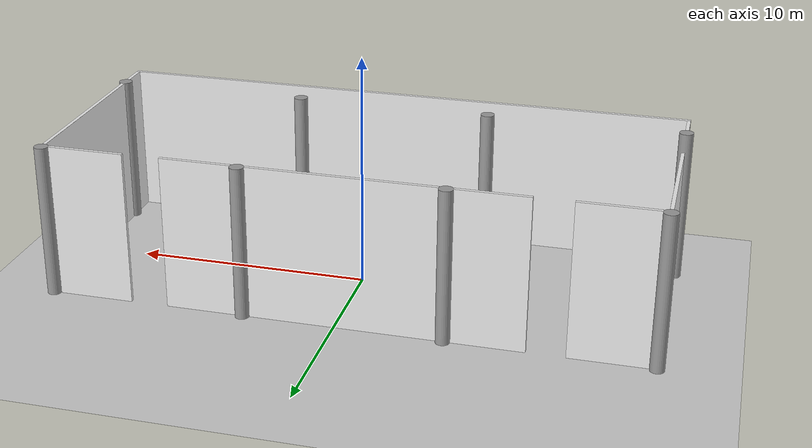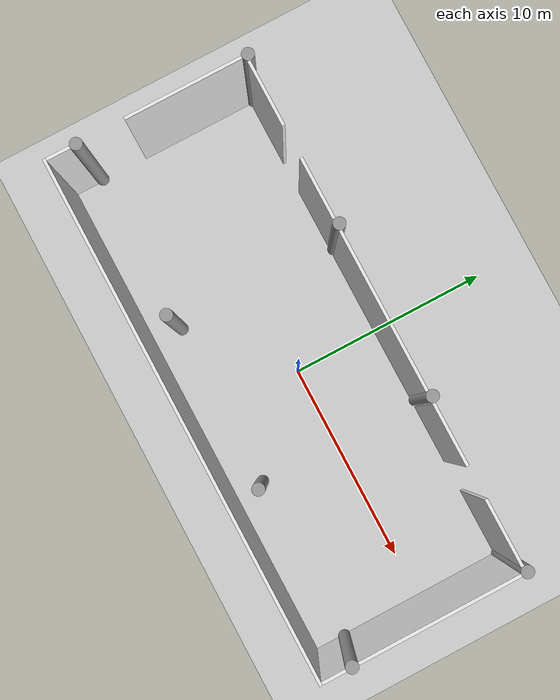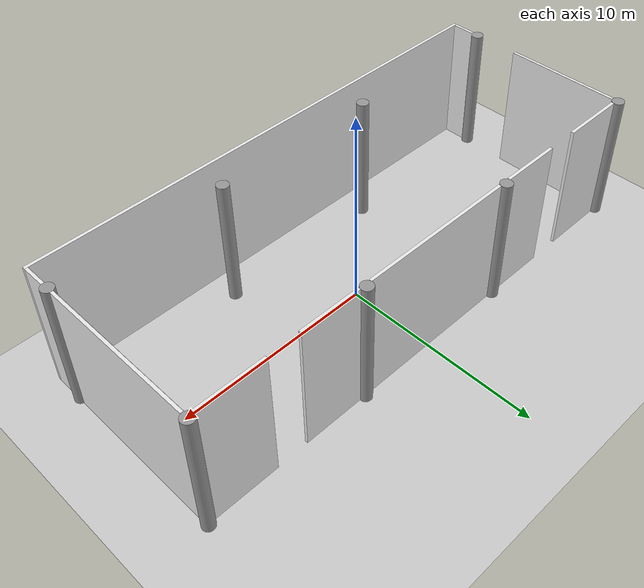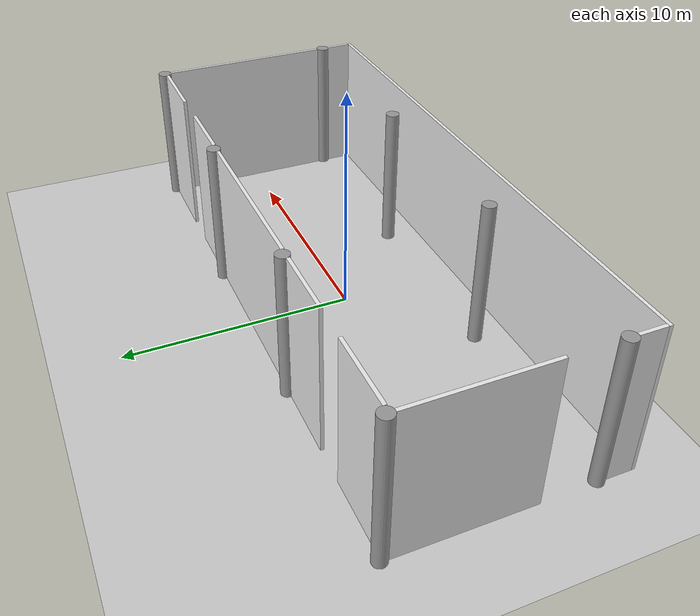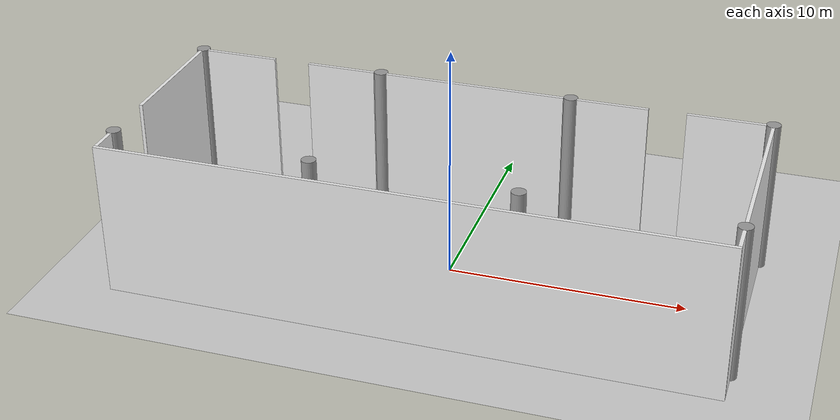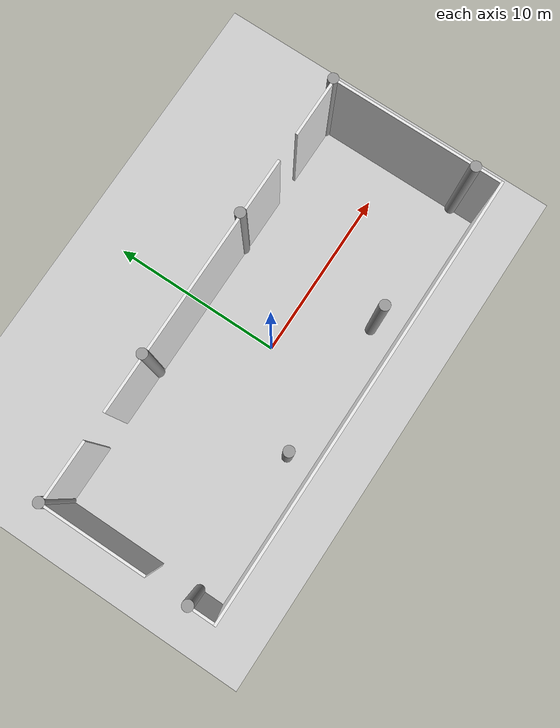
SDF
<?xml version="1.0" ?>
<sdf version="1.6">
   <world name="default">
      <include>
         <uri>model://ground_plane</uri>
      </include>
      <include>
         <uri>model://sun</uri>
      </include>
      <include>
         <uri>model://tii_lab_noceil</uri>
         <pose>-0.3 0.4544 3.385 0 0 -1.57</pose>
      </include>
   </world>
</sdf>

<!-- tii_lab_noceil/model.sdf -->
<sdf version='1.7'>
  <model name='tii_lab_noceil'>
    <static>true</static>
    <link name='link_0'>
      <inertial>
        <mass>100</mass>
        <inertia>
          <ixx>0.145833</ixx>
          <ixy>0</ixy>
          <ixz>0</ixz>
          <iyy>0.145833</iyy>
          <iyz>0</iyz>
          <izz>0.125</izz>
        </inertia>
        <pose>0 0 0 0 -0 0</pose>
      </inertial>
      <pose>-3.94564 -12.6 -0.180789 0 -0 0</pose>
      <gravity>1</gravity>
      <self_collide>0</self_collide>
      <kinematic>0</kinematic>
      <enable_wind>0</enable_wind>
      <visual name='visual'>
        <pose>0 0 0 0 -0 0</pose>
        <geometry>
          <cylinder>
            <radius>0.3</radius>
            <length>6.77</length>
          </cylinder>
        </geometry>
        <material>
          <lighting>1</lighting>
          <script>
            <uri>file://media/materials/scripts/gazebo.material</uri>
            <name>Gazebo/Grey</name>
          </script>
          <shader type='pixel'>
            <normal_map>__default__</normal_map>
          </shader>
          <ambient>0.3 0.3 0.3 1</ambient>
          <diffuse>0.7 0.7 0.7 1</diffuse>
          <specular>0.01 0.01 0.01 1</specular>
          <emissive>0 0 0 1</emissive>
        </material>
        <transparency>0</transparency>
        <cast_shadows>1</cast_shadows>
      </visual>
      <collision name='collision'>
        <laser_retro>0</laser_retro>
        <max_contacts>10</max_contacts>
        <pose>0 0 0 0 -0 0</pose>
        <geometry>
          <cylinder>
            <radius>0.3</radius>
            <length>6.77</length>
          </cylinder>
        </geometry>
        <surface>
          <friction>
            <ode>
              <mu>1</mu>
              <mu2>1</mu2>
              <fdir1>0 0 0</fdir1>
              <slip1>0</slip1>
              <slip2>0</slip2>
            </ode>
            <torsional>
              <coefficient>1</coefficient>
              <patch_radius>0</patch_radius>
              <surface_radius>0</surface_radius>
              <use_patch_radius>1</use_patch_radius>
              <ode>
                <slip>0</slip>
              </ode>
            </torsional>
          </friction>
          <bounce>
            <restitution_coefficient>0</restitution_coefficient>
            <threshold>1e+06</threshold>
          </bounce>
          <contact>
            <collide_without_contact>0</collide_without_contact>
            <collide_without_contact_bitmask>1</collide_without_contact_bitmask>
            <collide_bitmask>1</collide_bitmask>
            <ode>
              <soft_cfm>0</soft_cfm>
              <soft_erp>0.2</soft_erp>
              <kp>1e+13</kp>
              <kd>1</kd>
              <max_vel>0.01</max_vel>
              <min_depth>0</min_depth>
            </ode>
            <bullet>
              <split_impulse>1</split_impulse>
              <split_impulse_penetration_threshold>-0.01</split_impulse_penetration_threshold>
              <soft_cfm>0</soft_cfm>
              <soft_erp>0.2</soft_erp>
              <kp>1e+13</kp>
              <kd>1</kd>
            </bullet>
          </contact>
        </surface>
      </collision>
    </link>
    <link name='link_0_clone'>
      <inertial>
        <mass>100</mass>
        <inertia>
          <ixx>0.145833</ixx>
          <ixy>0</ixy>
          <ixz>0</ixz>
          <iyy>0.145833</iyy>
          <iyz>0</iyz>
          <izz>0.125</izz>
        </inertia>
        <pose>0 0 0 0 -0 0</pose>
      </inertial>
      <pose>-3.94564 -4.2 -0.180789 0 -0 0</pose>
      <gravity>1</gravity>
      <self_collide>0</self_collide>
      <kinematic>0</kinematic>
      <enable_wind>0</enable_wind>
      <visual name='visual'>
        <pose>0 0 0 0 -0 0</pose>
        <geometry>
          <cylinder>
            <radius>0.3</radius>
            <length>6.77</length>
          </cylinder>
        </geometry>
        <material>
          <lighting>1</lighting>
          <script>
            <uri>file://media/materials/scripts/gazebo.material</uri>
            <name>Gazebo/Grey</name>
          </script>
          <shader type='pixel'>
            <normal_map>__default__</normal_map>
          </shader>
          <ambient>0.3 0.3 0.3 1</ambient>
          <diffuse>0.7 0.7 0.7 1</diffuse>
          <specular>0.01 0.01 0.01 1</specular>
          <emissive>0 0 0 1</emissive>
        </material>
        <transparency>0</transparency>
        <cast_shadows>1</cast_shadows>
      </visual>
      <collision name='collision'>
        <laser_retro>0</laser_retro>
        <max_contacts>10</max_contacts>
        <pose>0 0 0 0 -0 0</pose>
        <geometry>
          <cylinder>
            <radius>0.3</radius>
            <length>6.77</length>
          </cylinder>
        </geometry>
        <surface>
          <friction>
            <ode>
              <mu>1</mu>
              <mu2>1</mu2>
              <fdir1>0 0 0</fdir1>
              <slip1>0</slip1>
              <slip2>0</slip2>
            </ode>
            <torsional>
              <coefficient>1</coefficient>
              <patch_radius>0</patch_radius>
              <surface_radius>0</surface_radius>
              <use_patch_radius>1</use_patch_radius>
              <ode>
                <slip>0</slip>
              </ode>
            </torsional>
          </friction>
          <bounce>
            <restitution_coefficient>0</restitution_coefficient>
            <threshold>1e+06</threshold>
          </bounce>
          <contact>
            <collide_without_contact>0</collide_without_contact>
            <collide_without_contact_bitmask>1</collide_without_contact_bitmask>
            <collide_bitmask>1</collide_bitmask>
            <ode>
              <soft_cfm>0</soft_cfm>
              <soft_erp>0.2</soft_erp>
              <kp>1e+13</kp>
              <kd>1</kd>
              <max_vel>0.01</max_vel>
              <min_depth>0</min_depth>
            </ode>
            <bullet>
              <split_impulse>1</split_impulse>
              <split_impulse_penetration_threshold>-0.01</split_impulse_penetration_threshold>
              <soft_cfm>0</soft_cfm>
              <soft_erp>0.2</soft_erp>
              <kp>1e+13</kp>
              <kd>1</kd>
            </bullet>
          </contact>
        </surface>
      </collision>
    </link>
    <link name='link_0_clone_0'>
      <inertial>
        <mass>100</mass>
        <inertia>
          <ixx>0.145833</ixx>
          <ixy>0</ixy>
          <ixz>0</ixz>
          <iyy>0.145833</iyy>
          <iyz>0</iyz>
          <izz>0.125</izz>
        </inertia>
        <pose>0 0 0 0 -0 0</pose>
      </inertial>
      <pose>-3.94564 4.2 -0.180789 0 -0 0</pose>
      <gravity>1</gravity>
      <self_collide>0</self_collide>
      <kinematic>0</kinematic>
      <enable_wind>0</enable_wind>
      <visual name='visual'>
        <pose>0 0 0 0 -0 0</pose>
        <geometry>
          <cylinder>
            <radius>0.3</radius>
            <length>6.77</length>
          </cylinder>
        </geometry>
        <material>
          <lighting>1</lighting>
          <script>
            <uri>file://media/materials/scripts/gazebo.material</uri>
            <name>Gazebo/Grey</name>
          </script>
          <shader type='pixel'>
            <normal_map>__default__</normal_map>
          </shader>
          <ambient>0.3 0.3 0.3 1</ambient>
          <diffuse>0.7 0.7 0.7 1</diffuse>
          <specular>0.01 0.01 0.01 1</specular>
          <emissive>0 0 0 1</emissive>
        </material>
        <transparency>0</transparency>
        <cast_shadows>1</cast_shadows>
      </visual>
      <collision name='collision'>
        <laser_retro>0</laser_retro>
        <max_contacts>10</max_contacts>
        <pose>0 0 0 0 -0 0</pose>
        <geometry>
          <cylinder>
            <radius>0.3</radius>
            <length>6.77</length>
          </cylinder>
        </geometry>
        <surface>
          <friction>
            <ode>
              <mu>1</mu>
              <mu2>1</mu2>
              <fdir1>0 0 0</fdir1>
              <slip1>0</slip1>
              <slip2>0</slip2>
            </ode>
            <torsional>
              <coefficient>1</coefficient>
              <patch_radius>0</patch_radius>
              <surface_radius>0</surface_radius>
              <use_patch_radius>1</use_patch_radius>
              <ode>
                <slip>0</slip>
              </ode>
            </torsional>
          </friction>
          <bounce>
            <restitution_coefficient>0</restitution_coefficient>
            <threshold>1e+06</threshold>
          </bounce>
          <contact>
            <collide_without_contact>0</collide_without_contact>
            <collide_without_contact_bitmask>1</collide_without_contact_bitmask>
            <collide_bitmask>1</collide_bitmask>
            <ode>
              <soft_cfm>0</soft_cfm>
              <soft_erp>0.2</soft_erp>
              <kp>1e+13</kp>
              <kd>1</kd>
              <max_vel>0.01</max_vel>
              <min_depth>0</min_depth>
            </ode>
            <bullet>
              <split_impulse>1</split_impulse>
              <split_impulse_penetration_threshold>-0.01</split_impulse_penetration_threshold>
              <soft_cfm>0</soft_cfm>
              <soft_erp>0.2</soft_erp>
              <kp>1e+13</kp>
              <kd>1</kd>
            </bullet>
          </contact>
        </surface>
      </collision>
    </link>
    <link name='link_0_clone_1'>
      <inertial>
        <mass>100</mass>
        <inertia>
          <ixx>0.145833</ixx>
          <ixy>0</ixy>
          <ixz>0</ixz>
          <iyy>0.145833</iyy>
          <iyz>0</iyz>
          <izz>0.125</izz>
        </inertia>
        <pose>0 0 0 0 -0 0</pose>
      </inertial>
      <pose>-3.94564 12.6 -0.180789 0 -0 0</pose>
      <gravity>1</gravity>
      <self_collide>0</self_collide>
      <kinematic>0</kinematic>
      <enable_wind>0</enable_wind>
      <visual name='visual'>
        <pose>0 0 0 0 -0 0</pose>
        <geometry>
          <cylinder>
            <radius>0.3</radius>
            <length>6.77</length>
          </cylinder>
        </geometry>
        <material>
          <lighting>1</lighting>
          <script>
            <uri>file://media/materials/scripts/gazebo.material</uri>
            <name>Gazebo/Grey</name>
          </script>
          <shader type='pixel'>
            <normal_map>__default__</normal_map>
          </shader>
          <ambient>0.3 0.3 0.3 1</ambient>
          <diffuse>0.7 0.7 0.7 1</diffuse>
          <specular>0.01 0.01 0.01 1</specular>
          <emissive>0 0 0 1</emissive>
        </material>
        <transparency>0</transparency>
        <cast_shadows>1</cast_shadows>
      </visual>
      <collision name='collision'>
        <laser_retro>0</laser_retro>
        <max_contacts>10</max_contacts>
        <pose>0 0 0 0 -0 0</pose>
        <geometry>
          <cylinder>
            <radius>0.3</radius>
            <length>6.77</length>
          </cylinder>
        </geometry>
        <surface>
          <friction>
            <ode>
              <mu>1</mu>
              <mu2>1</mu2>
              <fdir1>0 0 0</fdir1>
              <slip1>0</slip1>
              <slip2>0</slip2>
            </ode>
            <torsional>
              <coefficient>1</coefficient>
              <patch_radius>0</patch_radius>
              <surface_radius>0</surface_radius>
              <use_patch_radius>1</use_patch_radius>
              <ode>
                <slip>0</slip>
              </ode>
            </torsional>
          </friction>
          <bounce>
            <restitution_coefficient>0</restitution_coefficient>
            <threshold>1e+06</threshold>
          </bounce>
          <contact>
            <collide_without_contact>0</collide_without_contact>
            <collide_without_contact_bitmask>1</collide_without_contact_bitmask>
            <collide_bitmask>1</collide_bitmask>
            <ode>
              <soft_cfm>0</soft_cfm>
              <soft_erp>0.2</soft_erp>
              <kp>1e+13</kp>
              <kd>1</kd>
              <max_vel>0.01</max_vel>
              <min_depth>0</min_depth>
            </ode>
            <bullet>
              <split_impulse>1</split_impulse>
              <split_impulse_penetration_threshold>-0.01</split_impulse_penetration_threshold>
              <soft_cfm>0</soft_cfm>
              <soft_erp>0.2</soft_erp>
              <kp>1e+13</kp>
              <kd>1</kd>
            </bullet>
          </contact>
        </surface>
      </collision>
    </link>
    <link name='link_0_clone_2'>
      <inertial>
        <mass>100</mass>
        <inertia>
          <ixx>0.145833</ixx>
          <ixy>0</ixy>
          <ixz>0</ixz>
          <iyy>0.145833</iyy>
          <iyz>0</iyz>
          <izz>0.125</izz>
        </inertia>
        <pose>0 0 0 0 -0 0</pose>
      </inertial>
      <pose>4.45436 -12.6 -0.180789 0 -0 0</pose>
      <gravity>1</gravity>
      <self_collide>0</self_collide>
      <kinematic>0</kinematic>
      <enable_wind>0</enable_wind>
      <visual name='visual'>
        <pose>0 0 0 0 -0 0</pose>
        <geometry>
          <cylinder>
            <radius>0.3</radius>
            <length>6.77</length>
          </cylinder>
        </geometry>
        <material>
          <lighting>1</lighting>
          <script>
            <uri>file://media/materials/scripts/gazebo.material</uri>
            <name>Gazebo/Grey</name>
          </script>
          <shader type='pixel'>
            <normal_map>__default__</normal_map>
          </shader>
          <ambient>0.3 0.3 0.3 1</ambient>
          <diffuse>0.7 0.7 0.7 1</diffuse>
          <specular>0.01 0.01 0.01 1</specular>
          <emissive>0 0 0 1</emissive>
        </material>
        <transparency>0</transparency>
        <cast_shadows>1</cast_shadows>
      </visual>
      <collision name='collision'>
        <laser_retro>0</laser_retro>
        <max_contacts>10</max_contacts>
        <pose>0 0 0 0 -0 0</pose>
        <geometry>
          <cylinder>
            <radius>0.3</radius>
            <length>6.77</length>
          </cylinder>
        </geometry>
        <surface>
          <friction>
            <ode>
              <mu>1</mu>
              <mu2>1</mu2>
              <fdir1>0 0 0</fdir1>
              <slip1>0</slip1>
              <slip2>0</slip2>
            </ode>
            <torsional>
              <coefficient>1</coefficient>
              <patch_radius>0</patch_radius>
              <surface_radius>0</surface_radius>
              <use_patch_radius>1</use_patch_radius>
              <ode>
                <slip>0</slip>
              </ode>
            </torsional>
          </friction>
          <bounce>
            <restitution_coefficient>0</restitution_coefficient>
            <threshold>1e+06</threshold>
          </bounce>
          <contact>
            <collide_without_contact>0</collide_without_contact>
            <collide_without_contact_bitmask>1</collide_without_contact_bitmask>
            <collide_bitmask>1</collide_bitmask>
            <ode>
              <soft_cfm>0</soft_cfm>
              <soft_erp>0.2</soft_erp>
              <kp>1e+13</kp>
              <kd>1</kd>
              <max_vel>0.01</max_vel>
              <min_depth>0</min_depth>
            </ode>
            <bullet>
              <split_impulse>1</split_impulse>
              <split_impulse_penetration_threshold>-0.01</split_impulse_penetration_threshold>
              <soft_cfm>0</soft_cfm>
              <soft_erp>0.2</soft_erp>
              <kp>1e+13</kp>
              <kd>1</kd>
            </bullet>
          </contact>
        </surface>
      </collision>
    </link>
    <link name='link_0_clone_3'>
      <inertial>
        <mass>100</mass>
        <inertia>
          <ixx>0.145833</ixx>
          <ixy>0</ixy>
          <ixz>0</ixz>
          <iyy>0.145833</iyy>
          <iyz>0</iyz>
          <izz>0.125</izz>
        </inertia>
        <pose>0 0 0 0 -0 0</pose>
      </inertial>
      <pose>4.45436 -4.2 -0.180789 0 -0 0</pose>
      <gravity>1</gravity>
      <self_collide>0</self_collide>
      <kinematic>0</kinematic>
      <enable_wind>0</enable_wind>
      <visual name='visual'>
        <pose>0 0 0 0 -0 0</pose>
        <geometry>
          <cylinder>
            <radius>0.3</radius>
            <length>6.77</length>
          </cylinder>
        </geometry>
        <material>
          <lighting>1</lighting>
          <script>
            <uri>file://media/materials/scripts/gazebo.material</uri>
            <name>Gazebo/Grey</name>
          </script>
          <shader type='pixel'>
            <normal_map>__default__</normal_map>
          </shader>
          <ambient>0.3 0.3 0.3 1</ambient>
          <diffuse>0.7 0.7 0.7 1</diffuse>
          <specular>0.01 0.01 0.01 1</specular>
          <emissive>0 0 0 1</emissive>
        </material>
        <transparency>0</transparency>
        <cast_shadows>1</cast_shadows>
      </visual>
      <collision name='collision'>
        <laser_retro>0</laser_retro>
        <max_contacts>10</max_contacts>
        <pose>0 0 0 0 -0 0</pose>
        <geometry>
          <cylinder>
            <radius>0.3</radius>
            <length>6.77</length>
          </cylinder>
        </geometry>
        <surface>
          <friction>
            <ode>
              <mu>1</mu>
              <mu2>1</mu2>
              <fdir1>0 0 0</fdir1>
              <slip1>0</slip1>
              <slip2>0</slip2>
            </ode>
            <torsional>
              <coefficient>1</coefficient>
              <patch_radius>0</patch_radius>
              <surface_radius>0</surface_radius>
              <use_patch_radius>1</use_patch_radius>
              <ode>
                <slip>0</slip>
              </ode>
            </torsional>
          </friction>
          <bounce>
            <restitution_coefficient>0</restitution_coefficient>
            <threshold>1e+06</threshold>
          </bounce>
          <contact>
            <collide_without_contact>0</collide_without_contact>
            <collide_without_contact_bitmask>1</collide_without_contact_bitmask>
            <collide_bitmask>1</collide_bitmask>
            <ode>
              <soft_cfm>0</soft_cfm>
              <soft_erp>0.2</soft_erp>
              <kp>1e+13</kp>
              <kd>1</kd>
              <max_vel>0.01</max_vel>
              <min_depth>0</min_depth>
            </ode>
            <bullet>
              <split_impulse>1</split_impulse>
              <split_impulse_penetration_threshold>-0.01</split_impulse_penetration_threshold>
              <soft_cfm>0</soft_cfm>
              <soft_erp>0.2</soft_erp>
              <kp>1e+13</kp>
              <kd>1</kd>
            </bullet>
          </contact>
        </surface>
      </collision>
    </link>
    <link name='link_0_clone_4'>
      <inertial>
        <mass>100</mass>
        <inertia>
          <ixx>0.145833</ixx>
          <ixy>0</ixy>
          <ixz>0</ixz>
          <iyy>0.145833</iyy>
          <iyz>0</iyz>
          <izz>0.125</izz>
        </inertia>
        <pose>0 0 0 0 -0 0</pose>
      </inertial>
      <pose>4.45436 4.2 -0.180789 0 -0 0</pose>
      <gravity>1</gravity>
      <self_collide>0</self_collide>
      <kinematic>0</kinematic>
      <enable_wind>0</enable_wind>
      <visual name='visual'>
        <pose>0 0 0 0 -0 0</pose>
        <geometry>
          <cylinder>
            <radius>0.3</radius>
            <length>6.77</length>
          </cylinder>
        </geometry>
        <material>
          <lighting>1</lighting>
          <script>
            <uri>file://media/materials/scripts/gazebo.material</uri>
            <name>Gazebo/Grey</name>
          </script>
          <shader type='pixel'>
            <normal_map>__default__</normal_map>
          </shader>
          <ambient>0.3 0.3 0.3 1</ambient>
          <diffuse>0.7 0.7 0.7 1</diffuse>
          <specular>0.01 0.01 0.01 1</specular>
          <emissive>0 0 0 1</emissive>
        </material>
        <transparency>0</transparency>
        <cast_shadows>1</cast_shadows>
      </visual>
      <collision name='collision'>
        <laser_retro>0</laser_retro>
        <max_contacts>10</max_contacts>
        <pose>0 0 0 0 -0 0</pose>
        <geometry>
          <cylinder>
            <radius>0.3</radius>
            <length>6.77</length>
          </cylinder>
        </geometry>
        <surface>
          <friction>
            <ode>
              <mu>1</mu>
              <mu2>1</mu2>
              <fdir1>0 0 0</fdir1>
              <slip1>0</slip1>
              <slip2>0</slip2>
            </ode>
            <torsional>
              <coefficient>1</coefficient>
              <patch_radius>0</patch_radius>
              <surface_radius>0</surface_radius>
              <use_patch_radius>1</use_patch_radius>
              <ode>
                <slip>0</slip>
              </ode>
            </torsional>
          </friction>
          <bounce>
            <restitution_coefficient>0</restitution_coefficient>
            <threshold>1e+06</threshold>
          </bounce>
          <contact>
            <collide_without_contact>0</collide_without_contact>
            <collide_without_contact_bitmask>1</collide_without_contact_bitmask>
            <collide_bitmask>1</collide_bitmask>
            <ode>
              <soft_cfm>0</soft_cfm>
              <soft_erp>0.2</soft_erp>
              <kp>1e+13</kp>
              <kd>1</kd>
              <max_vel>0.01</max_vel>
              <min_depth>0</min_depth>
            </ode>
            <bullet>
              <split_impulse>1</split_impulse>
              <split_impulse_penetration_threshold>-0.01</split_impulse_penetration_threshold>
              <soft_cfm>0</soft_cfm>
              <soft_erp>0.2</soft_erp>
              <kp>1e+13</kp>
              <kd>1</kd>
            </bullet>
          </contact>
        </surface>
      </collision>
    </link>
    <link name='link_0_clone_5'>
      <inertial>
        <mass>100</mass>
        <inertia>
          <ixx>0.145833</ixx>
          <ixy>0</ixy>
          <ixz>0</ixz>
          <iyy>0.145833</iyy>
          <iyz>0</iyz>
          <izz>0.125</izz>
        </inertia>
        <pose>0 0 0 0 -0 0</pose>
      </inertial>
      <pose>4.45436 12.6 -0.180789 0 -0 0</pose>
      <gravity>1</gravity>
      <self_collide>0</self_collide>
      <kinematic>0</kinematic>
      <enable_wind>0</enable_wind>
      <visual name='visual'>
        <pose>0 0 0 0 -0 0</pose>
        <geometry>
          <cylinder>
            <radius>0.3</radius>
            <length>6.77</length>
          </cylinder>
        </geometry>
        <material>
          <lighting>1</lighting>
          <script>
            <uri>file://media/materials/scripts/gazebo.material</uri>
            <name>Gazebo/Grey</name>
          </script>
          <shader type='pixel'>
            <normal_map>__default__</normal_map>
          </shader>
          <ambient>0.3 0.3 0.3 1</ambient>
          <diffuse>0.7 0.7 0.7 1</diffuse>
          <specular>0.01 0.01 0.01 1</specular>
          <emissive>0 0 0 1</emissive>
        </material>
        <transparency>0</transparency>
        <cast_shadows>1</cast_shadows>
      </visual>
      <collision name='collision'>
        <laser_retro>0</laser_retro>
        <max_contacts>10</max_contacts>
        <pose>0 0 0 0 -0 0</pose>
        <geometry>
          <cylinder>
            <radius>0.3</radius>
            <length>6.77</length>
          </cylinder>
        </geometry>
        <surface>
          <friction>
            <ode>
              <mu>1</mu>
              <mu2>1</mu2>
              <fdir1>0 0 0</fdir1>
              <slip1>0</slip1>
              <slip2>0</slip2>
            </ode>
            <torsional>
              <coefficient>1</coefficient>
              <patch_radius>0</patch_radius>
              <surface_radius>0</surface_radius>
              <use_patch_radius>1</use_patch_radius>
              <ode>
                <slip>0</slip>
              </ode>
            </torsional>
          </friction>
          <bounce>
            <restitution_coefficient>0</restitution_coefficient>
            <threshold>1e+06</threshold>
          </bounce>
          <contact>
            <collide_without_contact>0</collide_without_contact>
            <collide_without_contact_bitmask>1</collide_without_contact_bitmask>
            <collide_bitmask>1</collide_bitmask>
            <ode>
              <soft_cfm>0</soft_cfm>
              <soft_erp>0.2</soft_erp>
              <kp>1e+13</kp>
              <kd>1</kd>
              <max_vel>0.01</max_vel>
              <min_depth>0</min_depth>
            </ode>
            <bullet>
              <split_impulse>1</split_impulse>
              <split_impulse_penetration_threshold>-0.01</split_impulse_penetration_threshold>
              <soft_cfm>0</soft_cfm>
              <soft_erp>0.2</soft_erp>
              <kp>1e+13</kp>
              <kd>1</kd>
            </bullet>
          </contact>
        </surface>
      </collision>
    </link>
    <link name='link_1'>
      <inertial>
        <mass>100</mass>
        <inertia>
          <ixx>0.166667</ixx>
          <ixy>0</ixy>
          <ixz>0</ixz>
          <iyy>0.166667</iyy>
          <iyz>0</iyz>
          <izz>0.166667</izz>
        </inertia>
        <pose>0 0 0 0 -0 0</pose>
      </inertial>
      <pose>-0.770642 -12.6 -0.180789 0 -0 0</pose>
      <gravity>1</gravity>
      <self_collide>0</self_collide>
      <kinematic>0</kinematic>
      <enable_wind>0</enable_wind>
      <visual name='visual'>
        <pose>0 0 0 0 -0 0</pose>
        <geometry>
          <box>
            <size>5.75 0.15 6.77</size>
          </box>
        </geometry>
        <material>
          <script>
            <uri>model://tii_lab_noceil/materials/scripts</uri>
            <uri>model://tii_lab_noceil/materials/textures</uri>
            <name>white_wall</name>
          </script>
        </material>
        <transparency>0</transparency>
        <cast_shadows>1</cast_shadows>
      </visual>
      <collision name='collision'>
        <laser_retro>0</laser_retro>
        <max_contacts>10</max_contacts>
        <pose>0 0 0 0 -0 0</pose>
        <geometry>
          <box>
            <size>5.75 0.15 6.77</size>
          </box>
        </geometry>
        <surface>
          <friction>
            <ode>
              <mu>1</mu>
              <mu2>1</mu2>
              <fdir1>0 0 0</fdir1>
              <slip1>0</slip1>
              <slip2>0</slip2>
            </ode>
            <torsional>
              <coefficient>1</coefficient>
              <patch_radius>0</patch_radius>
              <surface_radius>0</surface_radius>
              <use_patch_radius>1</use_patch_radius>
              <ode>
                <slip>0</slip>
              </ode>
            </torsional>
          </friction>
          <bounce>
            <restitution_coefficient>0</restitution_coefficient>
            <threshold>1e+06</threshold>
          </bounce>
          <contact>
            <collide_without_contact>0</collide_without_contact>
            <collide_without_contact_bitmask>1</collide_without_contact_bitmask>
            <collide_bitmask>1</collide_bitmask>
            <ode>
              <soft_cfm>0</soft_cfm>
              <soft_erp>0.2</soft_erp>
              <kp>1e+13</kp>
              <kd>1</kd>
              <max_vel>0.01</max_vel>
              <min_depth>0</min_depth>
            </ode>
            <bullet>
              <split_impulse>1</split_impulse>
              <split_impulse_penetration_threshold>-0.01</split_impulse_penetration_threshold>
              <soft_cfm>0</soft_cfm>
              <soft_erp>0.2</soft_erp>
              <kp>1e+13</kp>
              <kd>1</kd>
            </bullet>
          </contact>
        </surface>
      </collision>
    </link>
    <link name='link_1_clone'>
      <inertial>
        <mass>100</mass>
        <inertia>
          <ixx>0.166667</ixx>
          <ixy>0</ixy>
          <ixz>0</ixz>
          <iyy>0.166667</iyy>
          <iyz>0</iyz>
          <izz>0.166667</izz>
        </inertia>
        <pose>0 0 0 0 -0 0</pose>
      </inertial>
      <pose>5.32936 -12.6 -0.180789 0 -0 0</pose>
      <gravity>1</gravity>
      <self_collide>0</self_collide>
      <kinematic>0</kinematic>
      <enable_wind>0</enable_wind>
      <visual name='visual'>
        <pose>0 0 0 0 -0 0</pose>
        <geometry>
          <box>
            <size>1.15 0.15 6.77</size>
          </box>
        </geometry>
        <material>
          <script>
            <uri>model://tii_lab_noceil/materials/scripts</uri>
            <uri>model://tii_lab_noceil/materials/textures</uri>
            <name>white_wall</name>
          </script>
        </material>
        <transparency>0</transparency>
        <cast_shadows>1</cast_shadows>
      </visual>
      <collision name='collision'>
        <laser_retro>0</laser_retro>
        <max_contacts>10</max_contacts>
        <pose>0 0 0 0 -0 0</pose>
        <geometry>
          <box>
            <size>1.15 0.15 6.77</size>
          </box>
        </geometry>
        <surface>
          <friction>
            <ode>
              <mu>1</mu>
              <mu2>1</mu2>
              <fdir1>0 0 0</fdir1>
              <slip1>0</slip1>
              <slip2>0</slip2>
            </ode>
            <torsional>
              <coefficient>1</coefficient>
              <patch_radius>0</patch_radius>
              <surface_radius>0</surface_radius>
              <use_patch_radius>1</use_patch_radius>
              <ode>
                <slip>0</slip>
              </ode>
            </torsional>
          </friction>
          <bounce>
            <restitution_coefficient>0</restitution_coefficient>
            <threshold>1e+06</threshold>
          </bounce>
          <contact>
            <collide_without_contact>0</collide_without_contact>
            <collide_without_contact_bitmask>1</collide_without_contact_bitmask>
            <collide_bitmask>1</collide_bitmask>
            <ode>
              <soft_cfm>0</soft_cfm>
              <soft_erp>0.2</soft_erp>
              <kp>1e+13</kp>
              <kd>1</kd>
              <max_vel>0.01</max_vel>
              <min_depth>0</min_depth>
            </ode>
            <bullet>
              <split_impulse>1</split_impulse>
              <split_impulse_penetration_threshold>-0.01</split_impulse_penetration_threshold>
              <soft_cfm>0</soft_cfm>
              <soft_erp>0.2</soft_erp>
              <kp>1e+13</kp>
              <kd>1</kd>
            </bullet>
          </contact>
        </surface>
      </collision>
    </link>
    <link name='link_1_clone_0'>
      <inertial>
        <mass>100</mass>
        <inertia>
          <ixx>0.166667</ixx>
          <ixy>0</ixy>
          <ixz>0</ixz>
          <iyy>0.166667</iyy>
          <iyz>0</iyz>
          <izz>0.166667</izz>
        </inertia>
        <pose>0 0 0 0 -0 0</pose>
      </inertial>
      <pose>0.254357 12.6 -0.180789 0 -0 0</pose>
      <gravity>1</gravity>
      <self_collide>0</self_collide>
      <kinematic>0</kinematic>
      <enable_wind>0</enable_wind>
      <visual name='visual'>
        <pose>0 0 0 0 -0 0</pose>
        <geometry>
          <box>
            <size>7.8 0.15 6.77</size>
          </box>
        </geometry>
        <material>
          <script>
            <uri>model://tii_lab_noceil/materials/scripts</uri>
            <uri>model://tii_lab_noceil/materials/textures</uri>
            <name>white_wall</name>
          </script>
        </material>
        <transparency>0</transparency>
        <cast_shadows>1</cast_shadows>
      </visual>
      <collision name='collision'>
        <laser_retro>0</laser_retro>
        <max_contacts>10</max_contacts>
        <pose>0 0 0 0 -0 0</pose>
        <geometry>
          <box>
            <size>7.8 0.15 6.77</size>
          </box>
        </geometry>
        <surface>
          <friction>
            <ode>
              <mu>1</mu>
              <mu2>1</mu2>
              <fdir1>0 0 0</fdir1>
              <slip1>0</slip1>
              <slip2>0</slip2>
            </ode>
            <torsional>
              <coefficient>1</coefficient>
              <patch_radius>0</patch_radius>
              <surface_radius>0</surface_radius>
              <use_patch_radius>1</use_patch_radius>
              <ode>
                <slip>0</slip>
              </ode>
            </torsional>
          </friction>
          <bounce>
            <restitution_coefficient>0</restitution_coefficient>
            <threshold>1e+06</threshold>
          </bounce>
          <contact>
            <collide_without_contact>0</collide_without_contact>
            <collide_without_contact_bitmask>1</collide_without_contact_bitmask>
            <collide_bitmask>1</collide_bitmask>
            <ode>
              <soft_cfm>0</soft_cfm>
              <soft_erp>0.2</soft_erp>
              <kp>1e+13</kp>
              <kd>1</kd>
              <max_vel>0.01</max_vel>
              <min_depth>0</min_depth>
            </ode>
            <bullet>
              <split_impulse>1</split_impulse>
              <split_impulse_penetration_threshold>-0.01</split_impulse_penetration_threshold>
              <soft_cfm>0</soft_cfm>
              <soft_erp>0.2</soft_erp>
              <kp>1e+13</kp>
              <kd>1</kd>
            </bullet>
          </contact>
        </surface>
      </collision>
    </link>
    <link name='link_1_clone_0_clone'>
      <inertial>
        <mass>100</mass>
        <inertia>
          <ixx>0.166667</ixx>
          <ixy>0</ixy>
          <ixz>0</ixz>
          <iyy>0.166667</iyy>
          <iyz>0</iyz>
          <izz>0.166667</izz>
        </inertia>
        <pose>0 0 0 0 -0 0</pose>
      </inertial>
      <pose>0.254357 12.525 -0.180789 0 -0 0</pose>
      <gravity>1</gravity>
      <self_collide>0</self_collide>
      <kinematic>0</kinematic>
      <enable_wind>0</enable_wind>
      <visual name='visual'>
        <pose>0 0 0 0 -0 0</pose>
        <geometry>
          <box>
            <size>7.8 0.01 6.77</size>
          </box>
        </geometry>
        <material>
          <script>
            <uri>model://tii_lab_noceil/materials/scripts</uri>
            <uri>model://tii_lab_noceil/materials/textures</uri>
            <name>white_wall_SSRC</name>
          </script>
        </material>
        <transparency>0</transparency>
        <cast_shadows>1</cast_shadows>
      </visual>
      <collision name='collision'>
        <laser_retro>0</laser_retro>
        <max_contacts>10</max_contacts>
        <pose>0 0 0 0 -0 0</pose>
        <geometry>
          <box>
            <size>7.8 0.01 6.77</size>
          </box>
        </geometry>
        <surface>
          <friction>
            <ode>
              <mu>1</mu>
              <mu2>1</mu2>
              <fdir1>0 0 0</fdir1>
              <slip1>0</slip1>
              <slip2>0</slip2>
            </ode>
            <torsional>
              <coefficient>1</coefficient>
              <patch_radius>0</patch_radius>
              <surface_radius>0</surface_radius>
              <use_patch_radius>1</use_patch_radius>
              <ode>
                <slip>0</slip>
              </ode>
            </torsional>
          </friction>
          <bounce>
            <restitution_coefficient>0</restitution_coefficient>
            <threshold>1e+06</threshold>
          </bounce>
          <contact>
            <collide_without_contact>0</collide_without_contact>
            <collide_without_contact_bitmask>1</collide_without_contact_bitmask>
            <collide_bitmask>1</collide_bitmask>
            <ode>
              <soft_cfm>0</soft_cfm>
              <soft_erp>0.2</soft_erp>
              <kp>1e+13</kp>
              <kd>1</kd>
              <max_vel>0.01</max_vel>
              <min_depth>0</min_depth>
            </ode>
            <bullet>
              <split_impulse>1</split_impulse>
              <split_impulse_penetration_threshold>-0.01</split_impulse_penetration_threshold>
              <soft_cfm>0</soft_cfm>
              <soft_erp>0.2</soft_erp>
              <kp>1e+13</kp>
              <kd>1</kd>
            </bullet>
          </contact>
        </surface>
      </collision>
    </link>
    <link name='link_1_clone_1'>
      <inertial>
        <mass>100</mass>
        <inertia>
          <ixx>0.166667</ixx>
          <ixy>0</ixy>
          <ixz>0</ixz>
          <iyy>0.166667</iyy>
          <iyz>0</iyz>
          <izz>0.166667</izz>
        </inertia>
        <pose>0 0 0 0 -0 0</pose>
      </inertial>
      <pose>-0.770642 -12.525 -0.180789 0 -0 0</pose>
      <gravity>1</gravity>
      <self_collide>0</self_collide>
      <kinematic>0</kinematic>
      <enable_wind>0</enable_wind>
      <visual name='visual'>
        <pose>0 0 0 0 -0 0</pose>
        <geometry>
          <box>
            <size>5.75 0.01 6.77</size>
          </box>
        </geometry>
        <material>
          <script>
            <uri>model://tii_lab_noceil/materials/scripts</uri>
            <uri>model://tii_lab_noceil/materials/textures</uri>
            <name>white_wall_TII</name>
          </script>
        </material>
        <transparency>0</transparency>
        <cast_shadows>1</cast_shadows>
      </visual>
      <collision name='collision'>
        <laser_retro>0</laser_retro>
        <max_contacts>10</max_contacts>
        <pose>0 0 0 0 -0 0</pose>
        <geometry>
          <box>
            <size>5.75 0.01 6.77</size>
          </box>
        </geometry>
        <surface>
          <friction>
            <ode>
              <mu>1</mu>
              <mu2>1</mu2>
              <fdir1>0 0 0</fdir1>
              <slip1>0</slip1>
              <slip2>0</slip2>
            </ode>
            <torsional>
              <coefficient>1</coefficient>
              <patch_radius>0</patch_radius>
              <surface_radius>0</surface_radius>
              <use_patch_radius>1</use_patch_radius>
              <ode>
                <slip>0</slip>
              </ode>
            </torsional>
          </friction>
          <bounce>
            <restitution_coefficient>0</restitution_coefficient>
            <threshold>1e+06</threshold>
          </bounce>
          <contact>
            <collide_without_contact>0</collide_without_contact>
            <collide_without_contact_bitmask>1</collide_without_contact_bitmask>
            <collide_bitmask>1</collide_bitmask>
            <ode>
              <soft_cfm>0</soft_cfm>
              <soft_erp>0.2</soft_erp>
              <kp>1e+13</kp>
              <kd>1</kd>
              <max_vel>0.01</max_vel>
              <min_depth>0</min_depth>
            </ode>
            <bullet>
              <split_impulse>1</split_impulse>
              <split_impulse_penetration_threshold>-0.01</split_impulse_penetration_threshold>
              <soft_cfm>0</soft_cfm>
              <soft_erp>0.2</soft_erp>
              <kp>1e+13</kp>
              <kd>1</kd>
            </bullet>
          </contact>
        </surface>
      </collision>
    </link>
    <link name='link_1_clone_clone'>
      <inertial>
        <mass>100</mass>
        <inertia>
          <ixx>0.166667</ixx>
          <ixy>0</ixy>
          <ixz>0</ixz>
          <iyy>0.166667</iyy>
          <iyz>0</iyz>
          <izz>0.166667</izz>
        </inertia>
        <pose>0 0 0 0 -0 0</pose>
      </inertial>
      <pose>5.32936 12.6 -0.180789 0 -0 0</pose>
      <gravity>1</gravity>
      <self_collide>0</self_collide>
      <kinematic>0</kinematic>
      <enable_wind>0</enable_wind>
      <visual name='visual'>
        <pose>0 0 0 0 -0 0</pose>
        <geometry>
          <box>
            <size>1.15 0.15 6.77</size>
          </box>
        </geometry>
        <material>
          <script>
            <uri>model://tii_lab_noceil/materials/scripts</uri>
            <uri>model://tii_lab_noceil/materials/textures</uri>
            <name>white_wall</name>
          </script>
        </material>
        <transparency>0</transparency>
        <cast_shadows>1</cast_shadows>
      </visual>
      <collision name='collision'>
        <laser_retro>0</laser_retro>
        <max_contacts>10</max_contacts>
        <pose>0 0 0 0 -0 0</pose>
        <geometry>
          <box>
            <size>1.15 0.15 6.77</size>
          </box>
        </geometry>
        <surface>
          <friction>
            <ode>
              <mu>1</mu>
              <mu2>1</mu2>
              <fdir1>0 0 0</fdir1>
              <slip1>0</slip1>
              <slip2>0</slip2>
            </ode>
            <torsional>
              <coefficient>1</coefficient>
              <patch_radius>0</patch_radius>
              <surface_radius>0</surface_radius>
              <use_patch_radius>1</use_patch_radius>
              <ode>
                <slip>0</slip>
              </ode>
            </torsional>
          </friction>
          <bounce>
            <restitution_coefficient>0</restitution_coefficient>
            <threshold>1e+06</threshold>
          </bounce>
          <contact>
            <collide_without_contact>0</collide_without_contact>
            <collide_without_contact_bitmask>1</collide_without_contact_bitmask>
            <collide_bitmask>1</collide_bitmask>
            <ode>
              <soft_cfm>0</soft_cfm>
              <soft_erp>0.2</soft_erp>
              <kp>1e+13</kp>
              <kd>1</kd>
              <max_vel>0.01</max_vel>
              <min_depth>0</min_depth>
            </ode>
            <bullet>
              <split_impulse>1</split_impulse>
              <split_impulse_penetration_threshold>-0.01</split_impulse_penetration_threshold>
              <soft_cfm>0</soft_cfm>
              <soft_erp>0.2</soft_erp>
              <kp>1e+13</kp>
              <kd>1</kd>
            </bullet>
          </contact>
        </surface>
      </collision>
    </link>
    <link name='link_3'>
      <inertial>
        <mass>100</mass>
        <inertia>
          <ixx>0.166667</ixx>
          <ixy>0</ixy>
          <ixz>0</ixz>
          <iyy>0.166667</iyy>
          <iyz>0</iyz>
          <izz>0.166667</izz>
        </inertia>
        <pose>0 0 0 0 -0 0</pose>
      </inertial>
      <pose>5.97936 0 -0.180789 0 -0 0</pose>
      <gravity>1</gravity>
      <self_collide>0</self_collide>
      <kinematic>0</kinematic>
      <enable_wind>0</enable_wind>
      <visual name='visual'>
        <pose>0 0 0 0 -0 0</pose>
        <geometry>
          <box>
            <size>0.15 25.35 6.77</size>
          </box>
        </geometry>
        <material>
          <script>
            <uri>model://tii_lab_noceil/materials/scripts</uri>
            <uri>model://tii_lab_noceil/materials/textures</uri>
            <name>white_wall</name>
          </script>
        </material>
        <transparency>0</transparency>
        <cast_shadows>1</cast_shadows>
      </visual>
      <collision name='collision'>
        <laser_retro>0</laser_retro>
        <max_contacts>10</max_contacts>
        <pose>0 0 0 0 -0 0</pose>
        <geometry>
          <box>
            <size>0.15 25.35 6.77</size>
          </box>
        </geometry>
        <surface>
          <friction>
            <ode>
              <mu>1</mu>
              <mu2>1</mu2>
              <fdir1>0 0 0</fdir1>
              <slip1>0</slip1>
              <slip2>0</slip2>
            </ode>
            <torsional>
              <coefficient>1</coefficient>
              <patch_radius>0</patch_radius>
              <surface_radius>0</surface_radius>
              <use_patch_radius>1</use_patch_radius>
              <ode>
                <slip>0</slip>
              </ode>
            </torsional>
          </friction>
          <bounce>
            <restitution_coefficient>0</restitution_coefficient>
            <threshold>1e+06</threshold>
          </bounce>
          <contact>
            <collide_without_contact>0</collide_without_contact>
            <collide_without_contact_bitmask>1</collide_without_contact_bitmask>
            <collide_bitmask>1</collide_bitmask>
            <ode>
              <soft_cfm>0</soft_cfm>
              <soft_erp>0.2</soft_erp>
              <kp>1e+13</kp>
              <kd>1</kd>
              <max_vel>0.01</max_vel>
              <min_depth>0</min_depth>
            </ode>
            <bullet>
              <split_impulse>1</split_impulse>
              <split_impulse_penetration_threshold>-0.01</split_impulse_penetration_threshold>
              <soft_cfm>0</soft_cfm>
              <soft_erp>0.2</soft_erp>
              <kp>1e+13</kp>
              <kd>1</kd>
            </bullet>
          </contact>
        </surface>
      </collision>
    </link>
    <link name='link_3_clone'>
      <inertial>
        <mass>100</mass>
        <inertia>
          <ixx>0.166667</ixx>
          <ixy>0</ixy>
          <ixz>0</ixz>
          <iyy>0.166667</iyy>
          <iyz>0</iyz>
          <izz>0.166667</izz>
        </inertia>
        <pose>0 0 0 0 -0 0</pose>
      </inertial>
      <pose>-3.83764 0 -0.180789 0 -0 0</pose>
      <gravity>1</gravity>
      <self_collide>0</self_collide>
      <kinematic>0</kinematic>
      <enable_wind>0</enable_wind>
      <visual name='visual'>
        <pose>0 0 0 0 -0 0</pose>
        <geometry>
          <box>
            <size>0.15 7.818 6.77</size>
          </box>
        </geometry>
        <material>
          <script>
            <uri>model://tii_lab_noceil/materials/scripts</uri>
            <uri>model://tii_lab_noceil/materials/textures</uri>
            <name>white_wall</name>
          </script>
        </material>
        <transparency>0</transparency>
        <cast_shadows>1</cast_shadows>
      </visual>
      <collision name='collision'>
        <laser_retro>0</laser_retro>
        <max_contacts>10</max_contacts>
        <pose>0 0 0 0 -0 0</pose>
        <geometry>
          <box>
            <size>0.15 7.818 6.77</size>
          </box>
        </geometry>
        <surface>
          <friction>
            <ode>
              <mu>1</mu>
              <mu2>1</mu2>
              <fdir1>0 0 0</fdir1>
              <slip1>0</slip1>
              <slip2>0</slip2>
            </ode>
            <torsional>
              <coefficient>1</coefficient>
              <patch_radius>0</patch_radius>
              <surface_radius>0</surface_radius>
              <use_patch_radius>1</use_patch_radius>
              <ode>
                <slip>0</slip>
              </ode>
            </torsional>
          </friction>
          <bounce>
            <restitution_coefficient>0</restitution_coefficient>
            <threshold>1e+06</threshold>
          </bounce>
          <contact>
            <collide_without_contact>0</collide_without_contact>
            <collide_without_contact_bitmask>1</collide_without_contact_bitmask>
            <collide_bitmask>1</collide_bitmask>
            <ode>
              <soft_cfm>0</soft_cfm>
              <soft_erp>0.2</soft_erp>
              <kp>1e+13</kp>
              <kd>1</kd>
              <max_vel>0.01</max_vel>
              <min_depth>0</min_depth>
            </ode>
            <bullet>
              <split_impulse>1</split_impulse>
              <split_impulse_penetration_threshold>-0.01</split_impulse_penetration_threshold>
              <soft_cfm>0</soft_cfm>
              <soft_erp>0.2</soft_erp>
              <kp>1e+13</kp>
              <kd>1</kd>
            </bullet>
          </contact>
        </surface>
      </collision>
    </link>
    <link name='link_3_clone_clone'>
      <inertial>
        <mass>100</mass>
        <inertia>
          <ixx>0.166667</ixx>
          <ixy>0</ixy>
          <ixz>0</ixz>
          <iyy>0.166667</iyy>
          <iyz>0</iyz>
          <izz>0.166667</izz>
        </inertia>
        <pose>0 0 0 0 -0 0</pose>
      </inertial>
      <pose>-3.83764 -10.7 -0.180789 0 -0 0</pose>
      <gravity>1</gravity>
      <self_collide>0</self_collide>
      <kinematic>0</kinematic>
      <enable_wind>0</enable_wind>
      <visual name='visual'>
        <pose>0 0 0 0 -0 0</pose>
        <geometry>
          <box>
            <size>0.15 3.218 6.77</size>
          </box>
        </geometry>
        <material>
          <script>
            <uri>model://tii_lab_noceil/materials/scripts</uri>
            <uri>model://tii_lab_noceil/materials/textures</uri>
            <name>white_wall</name>
          </script>
        </material>
        <transparency>0</transparency>
        <cast_shadows>1</cast_shadows>
      </visual>
      <collision name='collision'>
        <laser_retro>0</laser_retro>
        <max_contacts>10</max_contacts>
        <pose>0 0 0 0 -0 0</pose>
        <geometry>
          <box>
            <size>0.15 3.218 6.77</size>
          </box>
        </geometry>
        <surface>
          <friction>
            <ode>
              <mu>1</mu>
              <mu2>1</mu2>
              <fdir1>0 0 0</fdir1>
              <slip1>0</slip1>
              <slip2>0</slip2>
            </ode>
            <torsional>
              <coefficient>1</coefficient>
              <patch_radius>0</patch_radius>
              <surface_radius>0</surface_radius>
              <use_patch_radius>1</use_patch_radius>
              <ode>
                <slip>0</slip>
              </ode>
            </torsional>
          </friction>
          <bounce>
            <restitution_coefficient>0</restitution_coefficient>
            <threshold>1e+06</threshold>
          </bounce>
          <contact>
            <collide_without_contact>0</collide_without_contact>
            <collide_without_contact_bitmask>1</collide_without_contact_bitmask>
            <collide_bitmask>1</collide_bitmask>
            <ode>
              <soft_cfm>0</soft_cfm>
              <soft_erp>0.2</soft_erp>
              <kp>1e+13</kp>
              <kd>1</kd>
              <max_vel>0.01</max_vel>
              <min_depth>0</min_depth>
            </ode>
            <bullet>
              <split_impulse>1</split_impulse>
              <split_impulse_penetration_threshold>-0.01</split_impulse_penetration_threshold>
              <soft_cfm>0</soft_cfm>
              <soft_erp>0.2</soft_erp>
              <kp>1e+13</kp>
              <kd>1</kd>
            </bullet>
          </contact>
        </surface>
      </collision>
    </link>
    <link name='link_3_clone_clone_clone'>
      <inertial>
        <mass>100</mass>
        <inertia>
          <ixx>0.166667</ixx>
          <ixy>0</ixy>
          <ixz>0</ixz>
          <iyy>0.166667</iyy>
          <iyz>0</iyz>
          <izz>0.166667</izz>
        </inertia>
        <pose>0 0 0 0 -0 0</pose>
      </inertial>
      <pose>-3.84044 -6 -0.180789 0 -0 0</pose>
      <gravity>1</gravity>
      <self_collide>0</self_collide>
      <kinematic>0</kinematic>
      <enable_wind>0</enable_wind>
      <visual name='visual'>
        <pose>0 0 0 0 -0 0</pose>
        <geometry>
          <box>
            <size>0.15 3.018 6.77</size>
          </box>
        </geometry>
        <material>
          <script>
            <uri>model://tii_lab_noceil/materials/scripts</uri>
            <uri>model://tii_lab_noceil/materials/textures</uri>
            <name>white_wall</name>
          </script>
        </material>
        <transparency>0</transparency>
        <cast_shadows>1</cast_shadows>
      </visual>
      <collision name='collision'>
        <laser_retro>0</laser_retro>
        <max_contacts>10</max_contacts>
        <pose>0 0 0 0 -0 0</pose>
        <geometry>
          <box>
            <size>0.15 3.018 6.77</size>
          </box>
        </geometry>
        <surface>
          <friction>
            <ode>
              <mu>1</mu>
              <mu2>1</mu2>
              <fdir1>0 0 0</fdir1>
              <slip1>0</slip1>
              <slip2>0</slip2>
            </ode>
            <torsional>
              <coefficient>1</coefficient>
              <patch_radius>0</patch_radius>
              <surface_radius>0</surface_radius>
              <use_patch_radius>1</use_patch_radius>
              <ode>
                <slip>0</slip>
              </ode>
            </torsional>
          </friction>
          <bounce>
            <restitution_coefficient>0</restitution_coefficient>
            <threshold>1e+06</threshold>
          </bounce>
          <contact>
            <collide_without_contact>0</collide_without_contact>
            <collide_without_contact_bitmask>1</collide_without_contact_bitmask>
            <collide_bitmask>1</collide_bitmask>
            <ode>
              <soft_cfm>0</soft_cfm>
              <soft_erp>0.2</soft_erp>
              <kp>1e+13</kp>
              <kd>1</kd>
              <max_vel>0.01</max_vel>
              <min_depth>0</min_depth>
            </ode>
            <bullet>
              <split_impulse>1</split_impulse>
              <split_impulse_penetration_threshold>-0.01</split_impulse_penetration_threshold>
              <soft_cfm>0</soft_cfm>
              <soft_erp>0.2</soft_erp>
              <kp>1e+13</kp>
              <kd>1</kd>
            </bullet>
          </contact>
        </surface>
      </collision>
    </link>
    <link name='link_3_clone_clone_clone_0'>
      <inertial>
        <mass>100</mass>
        <inertia>
          <ixx>0.166667</ixx>
          <ixy>0</ixy>
          <ixz>0</ixz>
          <iyy>0.166667</iyy>
          <iyz>0</iyz>
          <izz>0.166667</izz>
        </inertia>
        <pose>0 0 0 0 -0 0</pose>
      </inertial>
      <pose>-3.85764 10.7 -0.180789 0 -0 0</pose>
      <gravity>1</gravity>
      <self_collide>0</self_collide>
      <kinematic>0</kinematic>
      <enable_wind>0</enable_wind>
      <visual name='visual'>
        <pose>0 0 0 0 -0 0</pose>
        <geometry>
          <box>
            <size>0.15 3.218 6.77</size>
          </box>
        </geometry>
        <material>
          <script>
            <uri>model://tii_lab_noceil/materials/scripts</uri>
            <uri>model://tii_lab_noceil/materials/textures</uri>
            <name>white_wall</name>
          </script>
        </material>
        <transparency>0</transparency>
        <cast_shadows>1</cast_shadows>
      </visual>
      <collision name='collision'>
        <laser_retro>0</laser_retro>
        <max_contacts>10</max_contacts>
        <pose>0 0 0 0 -0 0</pose>
        <geometry>
          <box>
            <size>0.15 3.218 6.77</size>
          </box>
        </geometry>
        <surface>
          <friction>
            <ode>
              <mu>1</mu>
              <mu2>1</mu2>
              <fdir1>0 0 0</fdir1>
              <slip1>0</slip1>
              <slip2>0</slip2>
            </ode>
            <torsional>
              <coefficient>1</coefficient>
              <patch_radius>0</patch_radius>
              <surface_radius>0</surface_radius>
              <use_patch_radius>1</use_patch_radius>
              <ode>
                <slip>0</slip>
              </ode>
            </torsional>
          </friction>
          <bounce>
            <restitution_coefficient>0</restitution_coefficient>
            <threshold>1e+06</threshold>
          </bounce>
          <contact>
            <collide_without_contact>0</collide_without_contact>
            <collide_without_contact_bitmask>1</collide_without_contact_bitmask>
            <collide_bitmask>1</collide_bitmask>
            <ode>
              <soft_cfm>0</soft_cfm>
              <soft_erp>0.2</soft_erp>
              <kp>1e+13</kp>
              <kd>1</kd>
              <max_vel>0.01</max_vel>
              <min_depth>0</min_depth>
            </ode>
            <bullet>
              <split_impulse>1</split_impulse>
              <split_impulse_penetration_threshold>-0.01</split_impulse_penetration_threshold>
              <soft_cfm>0</soft_cfm>
              <soft_erp>0.2</soft_erp>
              <kp>1e+13</kp>
              <kd>1</kd>
            </bullet>
          </contact>
        </surface>
      </collision>
    </link>
    <link name='link_3_clone_clone_clone_clone'>
      <inertial>
        <mass>100</mass>
        <inertia>
          <ixx>0.166667</ixx>
          <ixy>0</ixy>
          <ixz>0</ixz>
          <iyy>0.166667</iyy>
          <iyz>0</iyz>
          <izz>0.166667</izz>
        </inertia>
        <pose>0 0 0 0 -0 0</pose>
      </inertial>
      <pose>-3.83764 6 -0.180789 0 -0 0</pose>
      <gravity>1</gravity>
      <self_collide>0</self_collide>
      <kinematic>0</kinematic>
      <enable_wind>0</enable_wind>
      <visual name='visual'>
        <pose>0 0 0 0 -0 0</pose>
        <geometry>
          <box>
            <size>0.15 3.018 6.77</size>
          </box>
        </geometry>
        <material>
          <script>
            <uri>model://tii_lab_noceil/materials/scripts</uri>
            <uri>model://tii_lab_noceil/materials/textures</uri>
            <name>white_wall</name>
          </script>
        </material>
        <transparency>0</transparency>
        <cast_shadows>1</cast_shadows>
      </visual>
      <collision name='collision'>
        <laser_retro>0</laser_retro>
        <max_contacts>10</max_contacts>
        <pose>0 0 0 0 -0 0</pose>
        <geometry>
          <box>
            <size>0.15 3.018 6.77</size>
          </box>
        </geometry>
        <surface>
          <friction>
            <ode>
              <mu>1</mu>
              <mu2>1</mu2>
              <fdir1>0 0 0</fdir1>
              <slip1>0</slip1>
              <slip2>0</slip2>
            </ode>
            <torsional>
              <coefficient>1</coefficient>
              <patch_radius>0</patch_radius>
              <surface_radius>0</surface_radius>
              <use_patch_radius>1</use_patch_radius>
              <ode>
                <slip>0</slip>
              </ode>
            </torsional>
          </friction>
          <bounce>
            <restitution_coefficient>0</restitution_coefficient>
            <threshold>1e+06</threshold>
          </bounce>
          <contact>
            <collide_without_contact>0</collide_without_contact>
            <collide_without_contact_bitmask>1</collide_without_contact_bitmask>
            <collide_bitmask>1</collide_bitmask>
            <ode>
              <soft_cfm>0</soft_cfm>
              <soft_erp>0.2</soft_erp>
              <kp>1e+13</kp>
              <kd>1</kd>
              <max_vel>0.01</max_vel>
              <min_depth>0</min_depth>
            </ode>
            <bullet>
              <split_impulse>1</split_impulse>
              <split_impulse_penetration_threshold>-0.01</split_impulse_penetration_threshold>
              <soft_cfm>0</soft_cfm>
              <soft_erp>0.2</soft_erp>
              <kp>1e+13</kp>
              <kd>1</kd>
            </bullet>
          </contact>
        </surface>
      </collision>
    </link>
    <static>0</static>
    <allow_auto_disable>1</allow_auto_disable>
  </model>
</sdf>
